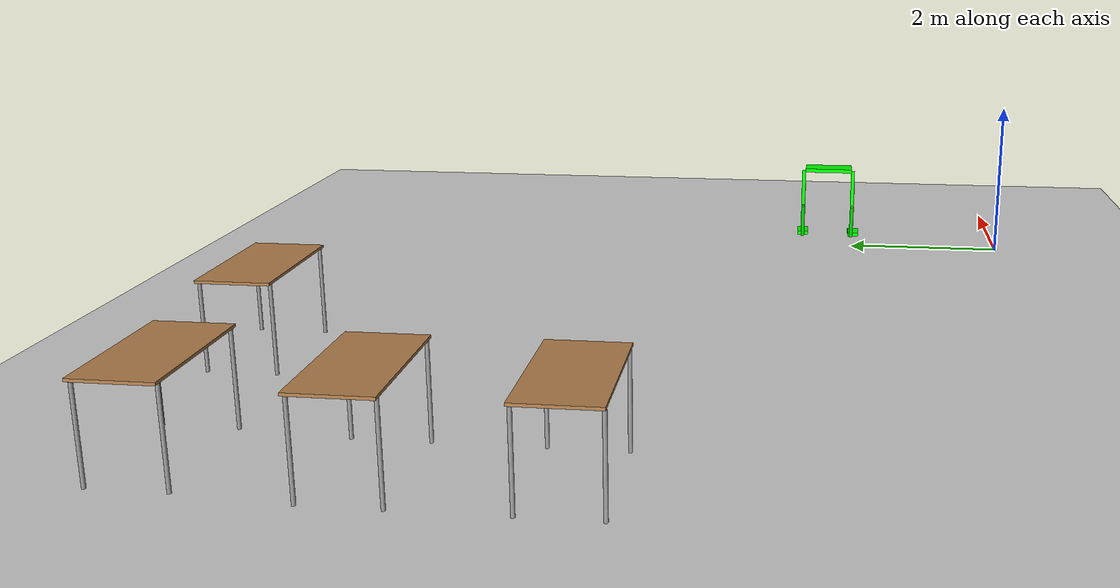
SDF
<sdf version="1.6">
 <world name="default">
  <model name="ground_plane">
   <static>1</static>
   <link name="link">
    <collision name="collision">
     <geometry><plane><normal>0 0 1</normal><size>100 100</size></plane></geometry>
     <surface>
      <contact><collide_bitmask>65535</collide_bitmask></contact>
      <friction><ode><mu>100</mu><mu2>50</mu2></ode></friction>
     </surface>
    </collision>
    <visual name="visual">
     <cast_shadows>0</cast_shadows>
     <geometry><plane><normal>0 0 1</normal><size>100 100</size></plane></geometry>
     <material>
      <script><uri>file://media/materials/scripts/gazebo.material</uri><name>Gazebo/Grey</name></script>
     </material>
    </visual>
   </link>
  </model>
  <model name="robot_clone">
   <link name="link_0">
    <pose>0.171276 -0.377857 -0.408657 0 -0 0</pose>
    <inertial>
     <mass>1</mass>
     <inertia>
      <ixx>0.166667</ixx>
      <ixy>0</ixy>
      <ixz>0</ixz>
      <iyy>0.166667</iyy>
      <iyz>0</iyz>
      <izz>0.166667</izz>
     </inertia>
    </inertial>
    <visual name="visual">
     <geometry><box><size>0.3 0.15 0.05</size></box></geometry>
     <material>
      <lighting>1</lighting>
      <script><uri>file://media/materials/scripts/gazebo.material</uri><name>Gazebo/Grey</name></script>
      <shader type="pixel"><normal_map>__default__</normal_map></shader>
      <ambient>0.3 0.3 0.3 1</ambient>
      <diffuse>0 1 0 1</diffuse>
      <specular>0.01 0.01 0.01 1</specular>
      <emissive>0 0 0 1</emissive>
     </material>
    </visual>
    <collision name="collision">
     <geometry><box><size>0.3 0.15 0.05</size></box></geometry>
     <surface>
      <friction>
       <ode><mu>1</mu><mu2>1</mu2><fdir1>0 0 0</fdir1><slip1>0</slip1><slip2>0</slip2></ode>
       <torsional>
        <coefficient>1</coefficient>
        <patch_radius>0</patch_radius>
        <surface_radius>0</surface_radius>
        <use_patch_radius>1</use_patch_radius>
        <ode><slip>0</slip></ode>
       </torsional>
      </friction>
      <bounce><restitution_coefficient>0</restitution_coefficient><threshold>1e+06</threshold></bounce>
      <contact>
       <collide_without_contact>0</collide_without_contact>
       <collide_without_contact_bitmask>1</collide_without_contact_bitmask>
       <collide_bitmask>1</collide_bitmask>
       <ode>
        <soft_cfm>0</soft_cfm>
        <soft_erp>0.2</soft_erp>
        <kp>1e+13</kp>
        <kd>1</kd>
        <max_vel>0.01</max_vel>
        <min_depth>0</min_depth>
       </ode>
       <bullet>
        <split_impulse>1</split_impulse>
        <split_impulse_penetration_threshold>-0.01</split_impulse_penetration_threshold>
        <soft_cfm>0</soft_cfm>
        <soft_erp>0.2</soft_erp>
        <kp>1e+13</kp>
        <kd>1</kd>
       </bullet>
      </contact>
     </surface>
    </collision>
   </link>
   <link name="link_0_clone">
    <pose>0.167162 0.354643 -0.398768 0 -0 0</pose>
    <inertial>
     <mass>1</mass>
     <inertia>
      <ixx>0.166667</ixx>
      <ixy>0</ixy>
      <ixz>0</ixz>
      <iyy>0.166667</iyy>
      <iyz>0</iyz>
      <izz>0.166667</izz>
     </inertia>
    </inertial>
    <visual name="visual">
     <geometry><box><size>0.3 0.15 0.05</size></box></geometry>
     <material>
      <lighting>1</lighting>
      <script><uri>file://media/materials/scripts/gazebo.material</uri><name>Gazebo/Grey</name></script>
      <shader type="pixel"><normal_map>__default__</normal_map></shader>
      <ambient>0.3 0.3 0.3 1</ambient>
      <diffuse>0 1 0 1</diffuse>
      <specular>0.01 0.01 0.01 1</specular>
      <emissive>0 0 0 1</emissive>
     </material>
    </visual>
    <collision name="collision">
     <geometry><box><size>0.3 0.15 0.05</size></box></geometry>
     <surface>
      <friction>
       <ode><mu>1</mu><mu2>1</mu2><fdir1>0 0 0</fdir1><slip1>0</slip1><slip2>0</slip2></ode>
       <torsional>
        <coefficient>1</coefficient>
        <patch_radius>0</patch_radius>
        <surface_radius>0</surface_radius>
        <use_patch_radius>1</use_patch_radius>
        <ode><slip>0</slip></ode>
       </torsional>
      </friction>
      <bounce><restitution_coefficient>0</restitution_coefficient><threshold>1e+06</threshold></bounce>
      <contact>
       <collide_without_contact>0</collide_without_contact>
       <collide_without_contact_bitmask>1</collide_without_contact_bitmask>
       <collide_bitmask>1</collide_bitmask>
       <ode>
        <soft_cfm>0</soft_cfm>
        <soft_erp>0.2</soft_erp>
        <kp>1e+13</kp>
        <kd>1</kd>
        <max_vel>0.01</max_vel>
        <min_depth>0</min_depth>
       </ode>
       <bullet>
        <split_impulse>1</split_impulse>
        <split_impulse_penetration_threshold>-0.01</split_impulse_penetration_threshold>
        <soft_cfm>0</soft_cfm>
        <soft_erp>0.2</soft_erp>
        <kp>1e+13</kp>
        <kd>1</kd>
       </bullet>
      </contact>
     </surface>
    </collision>
   </link>
   <link name="link_0_clone_0">
    <pose>-0.024251 0.004643 0.576232 0 -0 0</pose>
    <inertial>
     <mass>1</mass>
     <inertia>
      <ixx>0.166667</ixx>
      <ixy>0</ixy>
      <ixz>0</ixz>
      <iyy>0.166667</iyy>
      <iyz>0</iyz>
      <izz>0.166667</izz>
     </inertia>
    </inertial>
    <visual name="visual">
     <geometry><box><size>0.3 0.65 0.05</size></box></geometry>
     <material>
      <lighting>1</lighting>
      <script><uri>file://media/materials/scripts/gazebo.material</uri><name>Gazebo/Grey</name></script>
      <shader type="pixel"><normal_map>__default__</normal_map></shader>
      <ambient>0.3 0.3 0.3 1</ambient>
      <diffuse>0 1 0 1</diffuse>
      <specular>0.01 0.01 0.01 1</specular>
      <emissive>0 0 0 1</emissive>
     </material>
    </visual>
    <collision name="collision">
     <geometry><box><size>0.3 0.65 0.05</size></box></geometry>
     <surface>
      <friction>
       <ode><mu>1</mu><mu2>1</mu2><fdir1>0 0 0</fdir1><slip1>0</slip1><slip2>0</slip2></ode>
       <torsional>
        <coefficient>1</coefficient>
        <patch_radius>0</patch_radius>
        <surface_radius>0</surface_radius>
        <use_patch_radius>1</use_patch_radius>
        <ode><slip>0</slip></ode>
       </torsional>
      </friction>
      <bounce><restitution_coefficient>0</restitution_coefficient><threshold>1e+06</threshold></bounce>
      <contact>
       <collide_without_contact>0</collide_without_contact>
       <collide_without_contact_bitmask>1</collide_without_contact_bitmask>
       <collide_bitmask>1</collide_bitmask>
       <ode>
        <soft_cfm>0</soft_cfm>
        <soft_erp>0.2</soft_erp>
        <kp>1e+13</kp>
        <kd>1</kd>
        <max_vel>0.01</max_vel>
        <min_depth>0</min_depth>
       </ode>
       <bullet>
        <split_impulse>1</split_impulse>
        <split_impulse_penetration_threshold>-0.01</split_impulse_penetration_threshold>
        <soft_cfm>0</soft_cfm>
        <soft_erp>0.2</soft_erp>
        <kp>1e+13</kp>
        <kd>1</kd>
       </bullet>
      </contact>
     </surface>
    </collision>
   </link>
   <link name="link_1">
    <pose>-0.080601 0.354643 0.301249 0 0.3 0</pose>
    <inertial>
     <mass>1</mass>
     <inertia><ixx>0.145833</ixx><ixy>0</ixy><ixz>0</ixz><iyy>0.145833</iyy><iyz>0</iyz><izz>0.125</izz></inertia>
    </inertial>
    <visual name="visual">
     <geometry><cylinder><radius>0.025</radius><length>0.5</length></cylinder></geometry>
     <material>
      <lighting>1</lighting>
      <script><uri>file://media/materials/scripts/gazebo.material</uri><name>Gazebo/Grey</name></script>
      <shader type="pixel"><normal_map>__default__</normal_map></shader>
      <ambient>0.3 0.3 0.3 1</ambient>
      <diffuse>0 1 0 1</diffuse>
      <specular>0.01 0.01 0.01 1</specular>
      <emissive>0 0 0 1</emissive>
     </material>
    </visual>
    <collision name="collision">
     <geometry><cylinder><radius>0.025</radius><length>0.5</length></cylinder></geometry>
     <surface>
      <friction>
       <ode><mu>1</mu><mu2>1</mu2><fdir1>0 0 0</fdir1><slip1>0</slip1><slip2>0</slip2></ode>
       <torsional>
        <coefficient>1</coefficient>
        <patch_radius>0</patch_radius>
        <surface_radius>0</surface_radius>
        <use_patch_radius>1</use_patch_radius>
        <ode><slip>0</slip></ode>
       </torsional>
      </friction>
      <bounce><restitution_coefficient>0</restitution_coefficient><threshold>1e+06</threshold></bounce>
      <contact>
       <collide_without_contact>0</collide_without_contact>
       <collide_without_contact_bitmask>1</collide_without_contact_bitmask>
       <collide_bitmask>1</collide_bitmask>
       <ode>
        <soft_cfm>0</soft_cfm>
        <soft_erp>0.2</soft_erp>
        <kp>1e+13</kp>
        <kd>1</kd>
        <max_vel>0.01</max_vel>
        <min_depth>0</min_depth>
       </ode>
       <bullet>
        <split_impulse>1</split_impulse>
        <split_impulse_penetration_threshold>-0.01</split_impulse_penetration_threshold>
        <soft_cfm>0</soft_cfm>
        <soft_erp>0.2</soft_erp>
        <kp>1e+13</kp>
        <kd>1</kd>
       </bullet>
      </contact>
     </surface>
    </collision>
   </link>
   <link name="link_1_clone">
    <pose>-0.076488 -0.345357 0.30501 0 0.3 0</pose>
    <inertial>
     <mass>1</mass>
     <inertia><ixx>0.145833</ixx><ixy>0</ixy><ixz>0</ixz><iyy>0.145833</iyy><iyz>0</iyz><izz>0.125</izz></inertia>
    </inertial>
    <visual name="visual">
     <geometry><cylinder><radius>0.025</radius><length>0.5</length></cylinder></geometry>
     <material>
      <lighting>1</lighting>
      <script><uri>file://media/materials/scripts/gazebo.material</uri><name>Gazebo/Grey</name></script>
      <shader type="pixel"><normal_map>__default__</normal_map></shader>
      <ambient>0.3 0.3 0.3 1</ambient>
      <diffuse>0 1 0 1</diffuse>
      <specular>0.01 0.01 0.01 1</specular>
      <emissive>0 0 0 1</emissive>
     </material>
    </visual>
    <collision name="collision">
     <geometry><cylinder><radius>0.025</radius><length>0.5</length></cylinder></geometry>
     <surface>
      <friction>
       <ode><mu>1</mu><mu2>1</mu2><fdir1>0 0 0</fdir1><slip1>0</slip1><slip2>0</slip2></ode>
       <torsional>
        <coefficient>1</coefficient>
        <patch_radius>0</patch_radius>
        <surface_radius>0</surface_radius>
        <use_patch_radius>1</use_patch_radius>
        <ode><slip>0</slip></ode>
       </torsional>
      </friction>
      <bounce><restitution_coefficient>0</restitution_coefficient><threshold>1e+06</threshold></bounce>
      <contact>
       <collide_without_contact>0</collide_without_contact>
       <collide_without_contact_bitmask>1</collide_without_contact_bitmask>
       <collide_bitmask>1</collide_bitmask>
       <ode>
        <soft_cfm>0</soft_cfm>
        <soft_erp>0.2</soft_erp>
        <kp>1e+13</kp>
        <kd>1</kd>
        <max_vel>0.01</max_vel>
        <min_depth>0</min_depth>
       </ode>
       <bullet>
        <split_impulse>1</split_impulse>
        <split_impulse_penetration_threshold>-0.01</split_impulse_penetration_threshold>
        <soft_cfm>0</soft_cfm>
        <soft_erp>0.2</soft_erp>
        <kp>1e+13</kp>
        <kd>1</kd>
       </bullet>
      </contact>
     </surface>
    </collision>
   </link>
   <link name="link_1_clone_0">
    <pose>-0.080601 0.354643 -0.187631 0 -0.3 0</pose>
    <inertial>
     <mass>1</mass>
     <inertia><ixx>0.145833</ixx><ixy>0</ixy><ixz>0</ixz><iyy>0.145833</iyy><iyz>0</iyz><izz>0.125</izz></inertia>
    </inertial>
    <visual name="visual">
     <geometry><cylinder><radius>0.025</radius><length>0.5</length></cylinder></geometry>
     <material>
      <lighting>1</lighting>
      <script><uri>file://media/materials/scripts/gazebo.material</uri><name>Gazebo/Grey</name></script>
      <shader type="pixel"><normal_map>__default__</normal_map></shader>
      <ambient>0.3 0.3 0.3 1</ambient>
      <diffuse>0 1 0 1</diffuse>
      <specular>0.01 0.01 0.01 1</specular>
      <emissive>0 0 0 1</emissive>
     </material>
    </visual>
    <collision name="collision">
     <geometry><cylinder><radius>0.025</radius><length>0.5</length></cylinder></geometry>
     <surface>
      <friction>
       <ode><mu>1</mu><mu2>1</mu2><fdir1>0 0 0</fdir1><slip1>0</slip1><slip2>0</slip2></ode>
       <torsional>
        <coefficient>1</coefficient>
        <patch_radius>0</patch_radius>
        <surface_radius>0</surface_radius>
        <use_patch_radius>1</use_patch_radius>
        <ode><slip>0</slip></ode>
       </torsional>
      </friction>
      <bounce><restitution_coefficient>0</restitution_coefficient><threshold>1e+06</threshold></bounce>
      <contact>
       <collide_without_contact>0</collide_without_contact>
       <collide_without_contact_bitmask>1</collide_without_contact_bitmask>
       <collide_bitmask>1</collide_bitmask>
       <ode>
        <soft_cfm>0</soft_cfm>
        <soft_erp>0.2</soft_erp>
        <kp>1e+13</kp>
        <kd>1</kd>
        <max_vel>0.01</max_vel>
        <min_depth>0</min_depth>
       </ode>
       <bullet>
        <split_impulse>1</split_impulse>
        <split_impulse_penetration_threshold>-0.01</split_impulse_penetration_threshold>
        <soft_cfm>0</soft_cfm>
        <soft_erp>0.2</soft_erp>
        <kp>1e+13</kp>
        <kd>1</kd>
       </bullet>
      </contact>
     </surface>
    </collision>
   </link>
   <link name="link_1_clone_0_clone">
    <pose>-0.076488 -0.345357 -0.187435 0 -0.3 0</pose>
    <inertial>
     <mass>1</mass>
     <inertia><ixx>0.145833</ixx><ixy>0</ixy><ixz>0</ixz><iyy>0.145833</iyy><iyz>0</iyz><izz>0.125</izz></inertia>
    </inertial>
    <visual name="visual">
     <geometry><cylinder><radius>0.025</radius><length>0.5</length></cylinder></geometry>
     <material>
      <lighting>1</lighting>
      <script><uri>file://media/materials/scripts/gazebo.material</uri><name>Gazebo/Grey</name></script>
      <shader type="pixel"><normal_map>__default__</normal_map></shader>
      <ambient>0.3 0.3 0.3 1</ambient>
      <diffuse>0 1 0 1</diffuse>
      <specular>0.01 0.01 0.01 1</specular>
      <emissive>0 0 0 1</emissive>
     </material>
    </visual>
    <collision name="collision">
     <geometry><cylinder><radius>0.025</radius><length>0.5</length></cylinder></geometry>
     <surface>
      <friction>
       <ode><mu>1</mu><mu2>1</mu2><fdir1>0 0 0</fdir1><slip1>0</slip1><slip2>0</slip2></ode>
       <torsional>
        <coefficient>1</coefficient>
        <patch_radius>0</patch_radius>
        <surface_radius>0</surface_radius>
        <use_patch_radius>1</use_patch_radius>
        <ode><slip>0</slip></ode>
       </torsional>
      </friction>
      <bounce><restitution_coefficient>0</restitution_coefficient><threshold>1e+06</threshold></bounce>
      <contact>
       <collide_without_contact>0</collide_without_contact>
       <collide_without_contact_bitmask>1</collide_without_contact_bitmask>
       <collide_bitmask>1</collide_bitmask>
       <ode>
        <soft_cfm>0</soft_cfm>
        <soft_erp>0.2</soft_erp>
        <kp>1e+13</kp>
        <kd>1</kd>
        <max_vel>0.01</max_vel>
        <min_depth>0</min_depth>
       </ode>
       <bullet>
        <split_impulse>1</split_impulse>
        <split_impulse_penetration_threshold>-0.01</split_impulse_penetration_threshold>
        <soft_cfm>0</soft_cfm>
        <soft_erp>0.2</soft_erp>
        <kp>1e+13</kp>
        <kd>1</kd>
       </bullet>
      </contact>
     </surface>
    </collision>
   </link>
   <joint name="link_0_clone_0_JOINT_0" type="revolute">
    <parent>link_0_clone_0</parent>
    <child>link_1</child>
    <axis>
     <xyz>0 1 0</xyz>
     <use_parent_model_frame>0</use_parent_model_frame>
     <limit>
      <lower>-1.79769e+308</lower>
      <upper>1.79769e+308</upper>
      <effort>-1</effort>
      <velocity>-1</velocity>
     </limit>
     <dynamics>
      <spring_reference>0</spring_reference>
      <spring_stiffness>0</spring_stiffness>
      <damping>0</damping>
      <friction>0</friction>
     </dynamics>
    </axis>
    <physics>
     <ode><limit><cfm>0</cfm><erp>0.2</erp></limit><suspension><cfm>0</cfm><erp>0.2</erp></suspension></ode>
    </physics>
   </joint>
   <joint name="link_0_clone_0_JOINT_1" type="revolute">
    <parent>link_0_clone_0</parent>
    <child>link_1_clone</child>
    <axis>
     <xyz>0 0 1</xyz>
     <use_parent_model_frame>0</use_parent_model_frame>
     <limit>
      <lower>-1.79769e+308</lower>
      <upper>1.79769e+308</upper>
      <effort>-1</effort>
      <velocity>-1</velocity>
     </limit>
     <dynamics>
      <spring_reference>0</spring_reference>
      <spring_stiffness>0</spring_stiffness>
      <damping>0</damping>
     </dynamics>
    </axis>
    <physics>
     <ode><limit><cfm>0</cfm><erp>0.2</erp></limit><suspension><cfm>0</cfm><erp>0.2</erp></suspension></ode>
    </physics>
   </joint>
   <joint name="link_1_JOINT_3" type="revolute">
    <parent>link_1</parent>
    <child>link_1_clone_0</child>
    <axis>
     <xyz>0 -1 0</xyz>
     <use_parent_model_frame>0</use_parent_model_frame>
     <limit>
      <lower>-1.79769e+308</lower>
      <upper>1.79769e+308</upper>
      <effort>-1</effort>
      <velocity>-1</velocity>
     </limit>
     <dynamics>
      <spring_reference>0</spring_reference>
      <spring_stiffness>0</spring_stiffness>
      <damping>0</damping>
     </dynamics>
    </axis>
    <physics>
     <ode><limit><cfm>0</cfm><erp>0.2</erp></limit><suspension><cfm>0</cfm><erp>0.2</erp></suspension></ode>
    </physics>
   </joint>
   <joint name="link_1_clone_0_JOINT_6" type="revolute">
    <parent>link_1_clone_0</parent>
    <child>link_0_clone</child>
    <axis>
     <xyz>0 1 0</xyz>
     <use_parent_model_frame>0</use_parent_model_frame>
     <limit>
      <lower>-1.79769e+308</lower>
      <upper>1.79769e+308</upper>
      <effort>-1</effort>
      <velocity>-1</velocity>
     </limit>
     <dynamics>
      <spring_reference>0</spring_reference>
      <spring_stiffness>0</spring_stiffness>
      <damping>0</damping>
     </dynamics>
    </axis>
    <physics>
     <ode><limit><cfm>0</cfm><erp>0.2</erp></limit><suspension><cfm>0</cfm><erp>0.2</erp></suspension></ode>
    </physics>
   </joint>
   <joint name="link_1_clone_0_clone_JOINT_5" type="revolute">
    <parent>link_1_clone_0_clone</parent>
    <child>link_0</child>
    <axis>
     <xyz>0 1 0</xyz>
     <use_parent_model_frame>0</use_parent_model_frame>
     <limit>
      <lower>-1.79769e+308</lower>
      <upper>1.79769e+308</upper>
      <effort>-1</effort>
      <velocity>-1</velocity>
     </limit>
     <dynamics>
      <spring_reference>0</spring_reference>
      <spring_stiffness>0</spring_stiffness>
      <damping>0</damping>
     </dynamics>
    </axis>
    <physics>
     <ode><limit><cfm>0</cfm><erp>0.2</erp></limit><suspension><cfm>0</cfm><erp>0.2</erp></suspension></ode>
    </physics>
   </joint>
   <joint name="link_1_clone_JOINT_4" type="revolute">
    <parent>link_1_clone</parent>
    <child>link_1_clone_0_clone</child>
    <axis>
     <xyz>0 1 0</xyz>
     <use_parent_model_frame>0</use_parent_model_frame>
     <limit>
      <lower>-1.79769e+308</lower>
      <upper>1.79769e+308</upper>
      <effort>-1</effort>
      <velocity>-1</velocity>
     </limit>
     <dynamics>
      <spring_reference>0</spring_reference>
      <spring_stiffness>0</spring_stiffness>
      <damping>0</damping>
     </dynamics>
    </axis>
    <physics>
     <ode><limit><cfm>0</cfm><erp>0.2</erp></limit><suspension><cfm>0</cfm><erp>0.2</erp></suspension></ode>
    </physics>
   </joint>
   <static>1</static>
   <allow_auto_disable>0</allow_auto_disable>
   <pose>0.55258 2.34262 0.423768 0 -0 0</pose>
  </model>
  <model name="table">
   <static>1</static>
   <link name="link">
    <collision name="surface">
     <pose>0 0 1 0 -0 0</pose>
     <geometry><box><size>1.5 0.8 0.03</size></box></geometry>
     <surface><friction><ode><mu>0.6</mu><mu2>0.6</mu2></ode></friction></surface>
    </collision>
    <visual name="visual1">
     <pose>0 0 1 0 -0 0</pose>
     <geometry><box><size>1.5 0.8 0.03</size></box></geometry>
     <material>
      <script><uri>file://media/materials/scripts/gazebo.material</uri><name>Gazebo/Wood</name></script>
     </material>
    </visual>
    <collision name="front_left_leg">
     <pose>0.68 0.38 0.5 0 -0 0</pose>
     <geometry><cylinder><radius>0.02</radius><length>1</length></cylinder></geometry>
    </collision>
    <visual name="front_left_leg">
     <pose>0.68 0.38 0.5 0 -0 0</pose>
     <geometry><cylinder><radius>0.02</radius><length>1</length></cylinder></geometry>
     <material>
      <script><uri>file://media/materials/scripts/gazebo.material</uri><name>Gazebo/Grey</name></script>
     </material>
    </visual>
    <collision name="front_right_leg">
     <pose>0.68 -0.38 0.5 0 -0 0</pose>
     <geometry><cylinder><radius>0.02</radius><length>1</length></cylinder></geometry>
    </collision>
    <visual name="front_right_leg">
     <pose>0.68 -0.38 0.5 0 -0 0</pose>
     <geometry><cylinder><radius>0.02</radius><length>1</length></cylinder></geometry>
     <material>
      <script><uri>file://media/materials/scripts/gazebo.material</uri><name>Gazebo/Grey</name></script>
     </material>
    </visual>
    <collision name="back_right_leg">
     <pose>-0.68 -0.38 0.5 0 -0 0</pose>
     <geometry><cylinder><radius>0.02</radius><length>1</length></cylinder></geometry>
    </collision>
    <visual name="back_right_leg">
     <pose>-0.68 -0.38 0.5 0 -0 0</pose>
     <geometry><cylinder><radius>0.02</radius><length>1</length></cylinder></geometry>
     <material>
      <script><uri>file://media/materials/scripts/gazebo.material</uri><name>Gazebo/Grey</name></script>
     </material>
    </visual>
    <collision name="back_left_leg">
     <pose>-0.68 0.38 0.5 0 -0 0</pose>
     <geometry><cylinder><radius>0.02</radius><length>1</length></cylinder></geometry>
    </collision>
    <visual name="back_left_leg">
     <pose>-0.68 0.38 0.5 0 -0 0</pose>
     <geometry><cylinder><radius>0.02</radius><length>1</length></cylinder></geometry>
     <material>
      <script><uri>file://media/materials/scripts/gazebo.material</uri><name>Gazebo/Grey</name></script>
     </material>
    </visual>
   </link>
   <pose>-7.92616 8.20685 0 0 -0 0</pose>
  </model>
  <model name="table_0">
   <static>1</static>
   <link name="link">
    <collision name="surface">
     <pose>0 0 1 0 -0 0</pose>
     <geometry><box><size>1.5 0.8 0.03</size></box></geometry>
     <surface><friction><ode><mu>0.6</mu><mu2>0.6</mu2></ode></friction></surface>
    </collision>
    <visual name="visual1">
     <pose>0 0 1 0 -0 0</pose>
     <geometry><box><size>1.5 0.8 0.03</size></box></geometry>
     <material>
      <script><uri>file://media/materials/scripts/gazebo.material</uri><name>Gazebo/Wood</name></script>
     </material>
    </visual>
    <collision name="front_left_leg">
     <pose>0.68 0.38 0.5 0 -0 0</pose>
     <geometry><cylinder><radius>0.02</radius><length>1</length></cylinder></geometry>
    </collision>
    <visual name="front_left_leg">
     <pose>0.68 0.38 0.5 0 -0 0</pose>
     <geometry><cylinder><radius>0.02</radius><length>1</length></cylinder></geometry>
     <material>
      <script><uri>file://media/materials/scripts/gazebo.material</uri><name>Gazebo/Grey</name></script>
     </material>
    </visual>
    <collision name="front_right_leg">
     <pose>0.68 -0.38 0.5 0 -0 0</pose>
     <geometry><cylinder><radius>0.02</radius><length>1</length></cylinder></geometry>
    </collision>
    <visual name="front_right_leg">
     <pose>0.68 -0.38 0.5 0 -0 0</pose>
     <geometry><cylinder><radius>0.02</radius><length>1</length></cylinder></geometry>
     <material>
      <script><uri>file://media/materials/scripts/gazebo.material</uri><name>Gazebo/Grey</name></script>
     </material>
    </visual>
    <collision name="back_right_leg">
     <pose>-0.68 -0.38 0.5 0 -0 0</pose>
     <geometry><cylinder><radius>0.02</radius><length>1</length></cylinder></geometry>
    </collision>
    <visual name="back_right_leg">
     <pose>-0.68 -0.38 0.5 0 -0 0</pose>
     <geometry><cylinder><radius>0.02</radius><length>1</length></cylinder></geometry>
     <material>
      <script><uri>file://media/materials/scripts/gazebo.material</uri><name>Gazebo/Grey</name></script>
     </material>
    </visual>
    <collision name="back_left_leg">
     <pose>-0.68 0.38 0.5 0 -0 0</pose>
     <geometry><cylinder><radius>0.02</radius><length>1</length></cylinder></geometry>
    </collision>
    <visual name="back_left_leg">
     <pose>-0.68 0.38 0.5 0 -0 0</pose>
     <geometry><cylinder><radius>0.02</radius><length>1</length></cylinder></geometry>
     <material>
      <script><uri>file://media/materials/scripts/gazebo.material</uri><name>Gazebo/Grey</name></script>
     </material>
    </visual>
   </link>
   <pose>-8.01645 6.32556 0 0 -0 0</pose>
  </model>
  <model name="table_1">
   <static>1</static>
   <link name="link">
    <collision name="surface">
     <pose>0 0 1 0 -0 0</pose>
     <geometry><box><size>1.5 0.8 0.03</size></box></geometry>
     <surface><friction><ode><mu>0.6</mu><mu2>0.6</mu2></ode></friction></surface>
    </collision>
    <visual name="visual1">
     <pose>0 0 1 0 -0 0</pose>
     <geometry><box><size>1.5 0.8 0.03</size></box></geometry>
     <material>
      <script><uri>file://media/materials/scripts/gazebo.material</uri><name>Gazebo/Wood</name></script>
     </material>
    </visual>
    <collision name="front_left_leg">
     <pose>0.68 0.38 0.5 0 -0 0</pose>
     <geometry><cylinder><radius>0.02</radius><length>1</length></cylinder></geometry>
    </collision>
    <visual name="front_left_leg">
     <pose>0.68 0.38 0.5 0 -0 0</pose>
     <geometry><cylinder><radius>0.02</radius><length>1</length></cylinder></geometry>
     <material>
      <script><uri>file://media/materials/scripts/gazebo.material</uri><name>Gazebo/Grey</name></script>
     </material>
    </visual>
    <collision name="front_right_leg">
     <pose>0.68 -0.38 0.5 0 -0 0</pose>
     <geometry><cylinder><radius>0.02</radius><length>1</length></cylinder></geometry>
    </collision>
    <visual name="front_right_leg">
     <pose>0.68 -0.38 0.5 0 -0 0</pose>
     <geometry><cylinder><radius>0.02</radius><length>1</length></cylinder></geometry>
     <material>
      <script><uri>file://media/materials/scripts/gazebo.material</uri><name>Gazebo/Grey</name></script>
     </material>
    </visual>
    <collision name="back_right_leg">
     <pose>-0.68 -0.38 0.5 0 -0 0</pose>
     <geometry><cylinder><radius>0.02</radius><length>1</length></cylinder></geometry>
    </collision>
    <visual name="back_right_leg">
     <pose>-0.68 -0.38 0.5 0 -0 0</pose>
     <geometry><cylinder><radius>0.02</radius><length>1</length></cylinder></geometry>
     <material>
      <script><uri>file://media/materials/scripts/gazebo.material</uri><name>Gazebo/Grey</name></script>
     </material>
    </visual>
    <collision name="back_left_leg">
     <pose>-0.68 0.38 0.5 0 -0 0</pose>
     <geometry><cylinder><radius>0.02</radius><length>1</length></cylinder></geometry>
    </collision>
    <visual name="back_left_leg">
     <pose>-0.68 0.38 0.5 0 -0 0</pose>
     <geometry><cylinder><radius>0.02</radius><length>1</length></cylinder></geometry>
     <material>
      <script><uri>file://media/materials/scripts/gazebo.material</uri><name>Gazebo/Grey</name></script>
     </material>
    </visual>
   </link>
   <pose>-8.01101 4.49021 0 0 -0 0</pose>
  </model>
  <model name="table_2">
   <static>1</static>
   <link name="link">
    <collision name="surface">
     <pose>0 0 1 0 -0 0</pose>
     <geometry><box><size>1.5 0.8 0.03</size></box></geometry>
     <surface><friction><ode><mu>0.6</mu><mu2>0.6</mu2></ode></friction></surface>
    </collision>
    <visual name="visual1">
     <pose>0 0 1 0 -0 0</pose>
     <geometry><box><size>1.5 0.8 0.03</size></box></geometry>
     <material>
      <script><uri>file://media/materials/scripts/gazebo.material</uri><name>Gazebo/Wood</name></script>
     </material>
    </visual>
    <collision name="front_left_leg">
     <pose>0.68 0.38 0.5 0 -0 0</pose>
     <geometry><cylinder><radius>0.02</radius><length>1</length></cylinder></geometry>
    </collision>
    <visual name="front_left_leg">
     <pose>0.68 0.38 0.5 0 -0 0</pose>
     <geometry><cylinder><radius>0.02</radius><length>1</length></cylinder></geometry>
     <material>
      <script><uri>file://media/materials/scripts/gazebo.material</uri><name>Gazebo/Grey</name></script>
     </material>
    </visual>
    <collision name="front_right_leg">
     <pose>0.68 -0.38 0.5 0 -0 0</pose>
     <geometry><cylinder><radius>0.02</radius><length>1</length></cylinder></geometry>
    </collision>
    <visual name="front_right_leg">
     <pose>0.68 -0.38 0.5 0 -0 0</pose>
     <geometry><cylinder><radius>0.02</radius><length>1</length></cylinder></geometry>
     <material>
      <script><uri>file://media/materials/scripts/gazebo.material</uri><name>Gazebo/Grey</name></script>
     </material>
    </visual>
    <collision name="back_right_leg">
     <pose>-0.68 -0.38 0.5 0 -0 0</pose>
     <geometry><cylinder><radius>0.02</radius><length>1</length></cylinder></geometry>
    </collision>
    <visual name="back_right_leg">
     <pose>-0.68 -0.38 0.5 0 -0 0</pose>
     <geometry><cylinder><radius>0.02</radius><length>1</length></cylinder></geometry>
     <material>
      <script><uri>file://media/materials/scripts/gazebo.material</uri><name>Gazebo/Grey</name></script>
     </material>
    </visual>
    <collision name="back_left_leg">
     <pose>-0.68 0.38 0.5 0 -0 0</pose>
     <geometry><cylinder><radius>0.02</radius><length>1</length></cylinder></geometry>
    </collision>
    <visual name="back_left_leg">
     <pose>-0.68 0.38 0.5 0 -0 0</pose>
     <geometry><cylinder><radius>0.02</radius><length>1</length></cylinder></geometry>
     <material>
      <script><uri>file://media/materials/scripts/gazebo.material</uri><name>Gazebo/Grey</name></script>
     </material>
    </visual>
   </link>
   <pose>-5.16656 8.42805 0 0 -0 0</pose>
  </model>
 </world>
</sdf>
